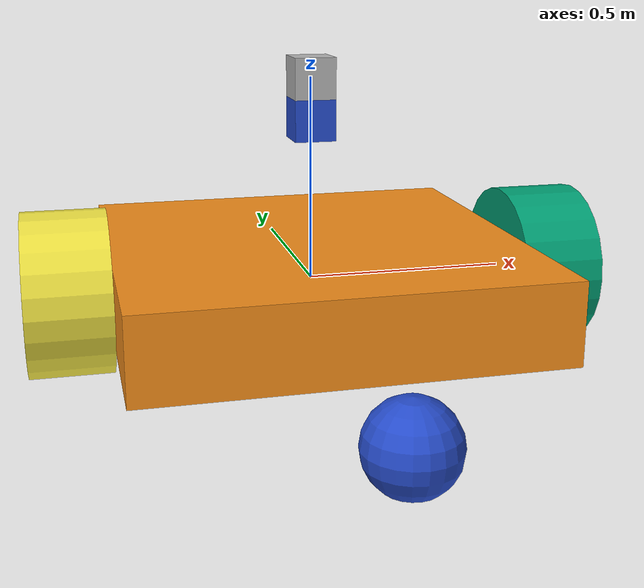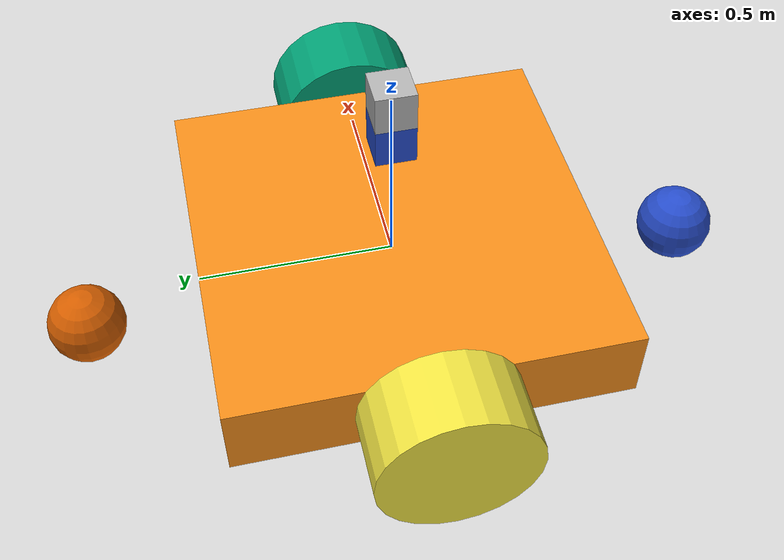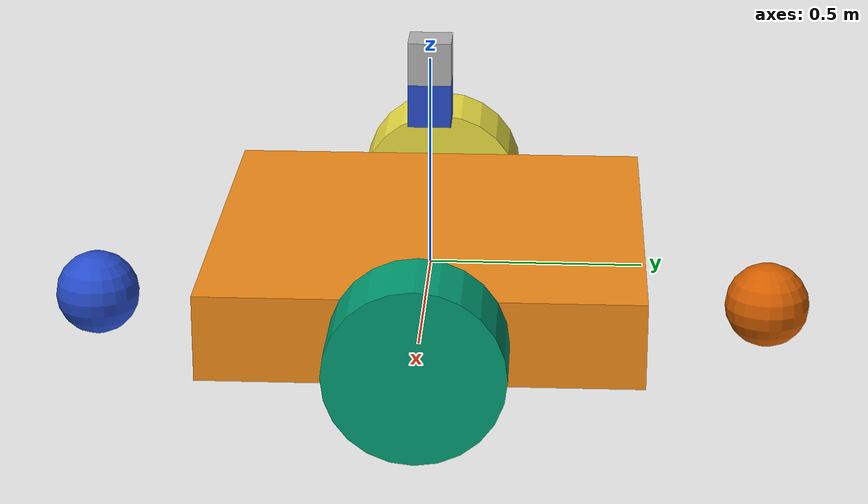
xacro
<?xml version="1.0" ?>
<robot name="wheely_robot" xmlns:xacro="http://www.ros.org/wiki/xacro">

<xacro:macro name="wheelInertial" params="mass radius height">
<xacro:property name="__ixx" value="${1/12*mass*(3*radius*radius+height*height)}"/>
<inertia ixx="${__ixx}"  ixy="0"  ixz="0" iyy="${__ixx}" iyz="0" izz="${1/2*mass*radius*radius}" />
</xacro:macro>

<link name="dummy"/>

<joint name="dummy_joint" type="fixed">
  <parent link="dummy"/>
  <child link="robot_base"/>
  <origin xyz="0.0 0 0" rpy="0 0 0"/>
  <axis xyz="0 0 0"/>
</joint>

<link name="robot_base">
    <visual>
        <geometry>
            <box size="1.0 1.0 0.2"/>
        </geometry>
        <material name="orange"/>
    </visual>
    <collision>
        <geometry>
            <box size="1.0 1.0 0.2"/>
        </geometry>
  </collision>
  <inertial>
    <origin xyz="0 0 0" rpy="0 0 0"/>
    <mass value="10"/>
    <inertia ixx="100"  ixy="0"  ixz="0" iyy="100" iyz="0" izz="100" />
  </inertial>
</link>

<link name="left_wheel">
    <visual>
        <geometry>
            <cylinder length="0.2" radius="0.2"/>
        </geometry>
    </visual>
    <collision>
        <geometry>
            <cylinder length="0.2" radius="0.2"/>
        </geometry>
    </collision>
  <inertial>
    <origin xyz="0 0 0.0" rpy="0 0 0"/>
    <mass value="1"/>
    <xacro:wheelInertial mass = "1" radius="0.2" height="0.2"/>
  </inertial>
</link>

<link name="right_wheel">
    <visual>
        <geometry>
            <cylinder length="0.2" radius="0.2"/>
        </geometry>
    </visual>
    <collision>
        <geometry>
            <cylinder length="0.2" radius="0.2"/>
        </geometry>
    </collision>
  <inertial>
    <origin xyz="0 0 0.0" rpy="0 0 0"/>
    <mass value="1"/>
    <xacro:wheelInertial mass = "1" radius="0.2" height="0.2"/>
  </inertial>
</link>

<link name="front_holder">
  <inertial>
    <origin xyz="0.0 0.0 0.0" rpy="0.0 0.0 0.0"/>
    <mass value="1.0"/>
    <xacro:wheelInertial mass = "1" radius="0.2" height="0.2"/>
  </inertial>
  <visual>
    <geometry>
      <sphere radius="0.1"/>
    </geometry>
  </visual>
  <collision>
    <geometry>
      <sphere radius="0.1"/>
    </geometry>
  </collision>
</link>

<link name="back_holder">
  <inertial>
    <origin xyz="0.0 0.0 0.0" rpy="0.0 0.0 0.0"/>
    <mass value="1.0"/>
    <xacro:wheelInertial mass = "1" radius="0.2" height="0.2"/>
  </inertial>
  <visual>
    <geometry>
      <sphere radius="0.1"/>
    </geometry>
  </visual>
  <collision>
    <geometry>
      <sphere radius="0.1"/>
    </geometry>
  </collision>
</link>

<joint name="camera_joint" type="fixed">
    <axis xyz="0 1 0" />
    <origin xyz="0 0 0.4" rpy="0 0 -1.57"/>
    <parent link="robot_base"/>
    <child link="camera_link"/>
  </joint>

  <!-- Camera -->
  <link name="camera_link">
    <collision>
      <origin xyz="0 0 0" rpy="0 0 0"/>
      <geometry>
    <box size="0.1 0.1 0.1"/>
      </geometry>
    </collision>

    <visual>
      <origin xyz="0 0 0" rpy="0 0 0"/>
      <geometry>
    <box size="0.1 0.1 0.1"/>
      </geometry>
      <material name="blue"/>
    </visual>

    <inertial>
      <mass value="1e-5" />
      <origin xyz="0 0 0" rpy="0 0 0"/>
      <inertia ixx="1e-6" ixy="0" ixz="0" iyy="1e-6" iyz="0" izz="1e-6" />
    </inertial>
  </link>

<!-- camera -->
  <gazebo reference="camera_link">
    <sensor type="camera" name="camera1">
      <update_rate>30.0</update_rate>
      <camera name="head">
        <horizontal_fov>1.3962634</horizontal_fov>
        <image>
          <width>800</width>
          <height>800</height>
          <format>R8G8B8</format>
        </image>
        <clip>
          <near>0.02</near>
          <far>300</far>
        </clip>
      </camera>
      <plugin name="camera_controller" filename="libgazebo_ros_camera.so">
        <alwaysOn>true</alwaysOn>
        <updateRate>0.0</updateRate>
        <cameraName>rrbot/camera1</cameraName>
        <imageTopicName>image_raw</imageTopicName>
        <cameraInfoTopicName>camera_info</cameraInfoTopicName>
        <frameName>camera_link</frameName>
        <hackBaseline>0.07</hackBaseline>
        <distortionK1>0.0</distortionK1>
        <distortionK2>0.0</distortionK2>
        <distortionK3>0.0</distortionK3>
        <distortionT1>0.0</distortionT1>
        <distortionT2>0.0</distortionT2>
      </plugin>
    </sensor>
  </gazebo>

<joint name="base_to_lwheel" type="continuous">
  <parent link="robot_base"/>
  <child link="left_wheel"/>
  <origin xyz="0.6 0 0" rpy="0 1.57079632679 0"/>
  <axis xyz="0 0 1"/>
</joint>

<joint name="base_to_rwheel" type="continuous">
  <parent link="robot_base"/>
  <child link="right_wheel"/>
  <origin xyz="-0.6 0 0" rpy="0 1.57079632679 0"/>
  <axis xyz="0 0 1"/>
</joint>

<joint name="base_to_fholder" type="continuous">
  <parent link="robot_base"/>
  <child link="front_holder"/>
  <origin xyz="0.0 -0.8 -0.095" rpy="0 0 0"/>
  <axis xyz="0 0 1"/>
</joint>

<joint name="base_to_bholder" type="continuous">
  <parent link="robot_base"/>
  <child link="back_holder"/>
  <origin xyz="0.0 0.8 -0.095" rpy="0 0 0"/>
  <axis xyz="0 0 1"/>
</joint>

<gazebo reference="front_holder">
<material>Gazebo/Blue</material>
</gazebo>

<gazebo>
    <plugin filename="libgazebo_ros_diff_drive.so" name="differential_drive_controller">
      <legacyMode>false</legacyMode>
      <alwaysOn>true</alwaysOn>
      <updateRate>20</updateRate>
      <leftJoint>base_to_lwheel</leftJoint>
      <rightJoint>base_to_rwheel</rightJoint>
      <wheelSeparation>1.1</wheelSeparation>
      <wheelDiameter>0.2</wheelDiameter>
      <torque>0.1</torque>
      <commandTopic>cmd_vel</commandTopic>
      <odometryTopic>odom</odometryTopic>
      <odometryFrame>odom</odometryFrame>
      <robotBaseFrame>robot_base</robotBaseFrame>
    </plugin>
  </gazebo>

<transmission name="left_wheel_transmission">
  <type>transmission_interface/SimpleTransmission</type>
  <joint name = "base_to_lwheel">
    <hardwareInterface>hardware_interface/EffortJointInterface</hardwareInterface>
  </joint>
  <actuator name="left_wheel_motor">
    <hardwareInterface>hardware_interface/EffortJointInterface</hardwareInterface>
    <mechanicalReduction>1</mechanicalReduction>
  </actuator>
</transmission>

<transmission name="right_wheel_transmission">
  <type>transmission_interface/SimpleTransmission</type>
  <joint name = "base_to_rwheel">
    <hardwareInterface>hardware_interface/EffortJointInterface</hardwareInterface>
  </joint>
  <actuator name="right_wheel_motor">
    <hardwareInterface>hardware_interface/EffortJointInterface</hardwareInterface>
    <mechanicalReduction>1</mechanicalReduction>
  </actuator>
</transmission>

<joint name="hokuyo_joint" type="fixed">
    <axis xyz="0 1 0" />
    <origin xyz="0 0 0.5" rpy="0 0 -1.57"/>
    <parent link="robot_base"/>
    <child link="hokuyo_link"/>
  </joint>

  <link name="hokuyo_link">
    <collision>
      <origin xyz="0 0 0" rpy="0 0 0"/>
      <geometry>
    <box size="0.1 0.1 0.1"/>
      </geometry>
    </collision>

    <visual>
      <origin xyz="0 0 0" rpy="0 0 0"/>
      <geometry>
        <box size="0.1 0.1 0.1"/>
      </geometry>
    </visual>

    <inertial>
      <mass value="1e-5" />
      <origin xyz="0 0 0" rpy="0 0 0"/>
      <inertia ixx="1e-6" ixy="0" ixz="0" iyy="1e-6" iyz="0" izz="1e-6" />
    </inertial>
  </link>

<gazebo reference="hokuyo_link">
    <sensor type="ray" name="head_hokuyo_sensor">
      <pose>0 0 0 0 0 0</pose>
      <visualize>false</visualize>
      <update_rate>10</update_rate>
      <ray>
        <scan>
          <horizontal>
            <samples>100</samples>
            <resolution>1</resolution>
            <min_angle>-1.57</min_angle>
            <max_angle>+1.57</max_angle>
          </horizontal>
        </scan>
        <range>
          <min>0.5</min>
          <max>5.0</max>
          <resolution>0.01</resolution>
        </range>
      </ray>
      <plugin name="gazebo_ros_head_hokuyo_controller" filename="libgazebo_ros_laser.so">
        <topicName>base_scan</topicName>
        <frameName>hokuyo_link</frameName>
      </plugin>
    </sensor>
  </gazebo>
</robot>
